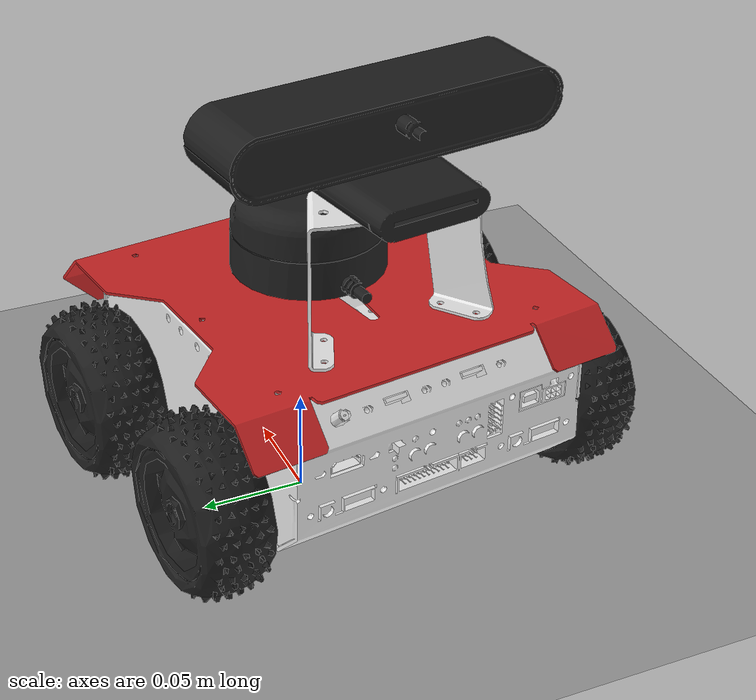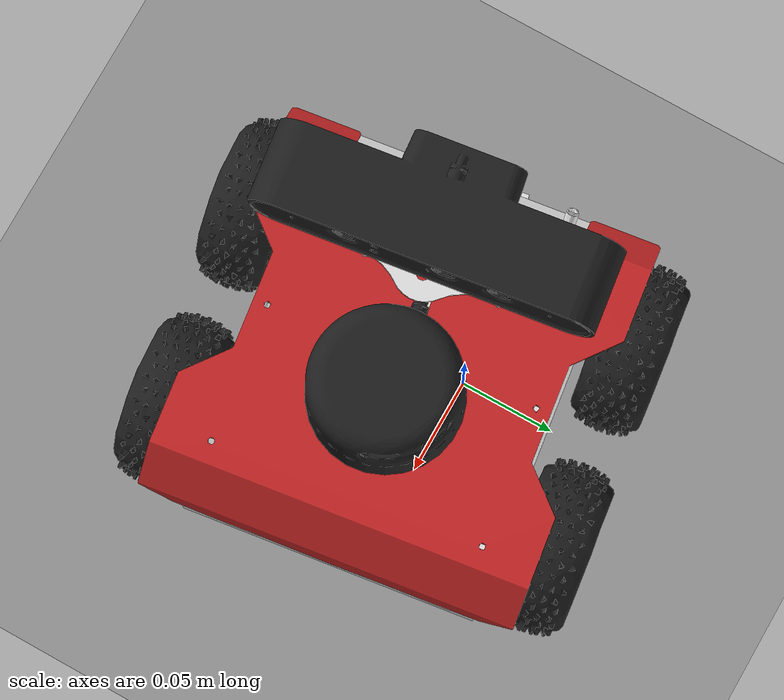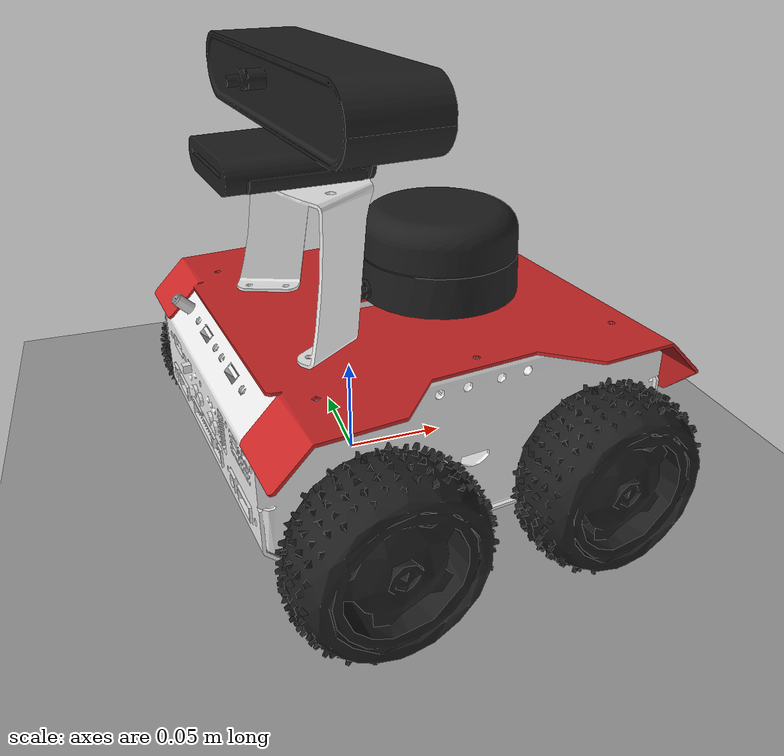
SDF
<sdf version="1.7">
 <world name="default">
  <light name="sun" type="directional">
   <pose>0 0 10 0 -0 0</pose>
   <diffuse>0.8 0.8 0.8 1</diffuse>
   <specular>0.2 0.2 0.2 1</specular>
   <attenuation>
    <range>1000</range>
    <constant>0.9</constant>
    <linear>0.01</linear>
    <quadratic>0.001</quadratic>
   </attenuation>
   <direction>0.5 0.1 -0.9</direction>
   <spot><inner_angle>0</inner_angle><outer_angle>0</outer_angle><falloff>0</falloff></spot>
  </light>
  <scene><ambient>0.4 0.4 0.4 1</ambient><background>0.7 0.7 0.7 1</background><shadows>1</shadows></scene>
  <physics type="ode">
   <max_step_size>0.01</max_step_size>
   <real_time_factor>1</real_time_factor>
   <real_time_update_rate>100</real_time_update_rate>
  </physics>
  <model name="ground_plane_0">
   <static>1</static>
   <link name="link">
    <collision name="collision">
     <geometry><plane><normal>0 0 1</normal><size>100 100</size></plane></geometry>
     <surface><friction><ode><mu>100</mu><mu2>50</mu2></ode></friction></surface>
    </collision>
    <visual name="visual">
     <cast_shadows>0</cast_shadows>
     <geometry><plane><normal>0 0 1</normal><size>100 100</size></plane></geometry>
     <material>
      <script><uri>file://media/materials/scripts/gazebo.material</uri><name>Gazebo/Grey</name></script>
     </material>
    </visual>
    <velocity_decay><linear>0</linear><angular>0</angular></velocity_decay>
   </link>
   <pose>0.497681 0 0 0 -0 0</pose>
  </model>
  <gravity>0 0 -9.8</gravity>
  <magnetic_field>6e-06 2.3e-05 -4.2e-05</magnetic_field>
  <atmosphere type="adiabatic"/>
  <spherical_coordinates>
   <surface_model>EARTH_WGS84</surface_model>
   <latitude_deg>0</latitude_deg>
   <longitude_deg>0</longitude_deg>
   <elevation>0</elevation>
   <heading_deg>0</heading_deg>
  </spherical_coordinates>
  <model name="rosbot">
   <link name="dummy">
    <inertial>
     <pose>-0 0 0.04003 0 -0 0</pose>
     <mass>5.01002</mass>
     <inertia>
      <ixx>0.0100024</ixx>
      <ixy>0.01</ixy>
      <ixz>3.8397e-08</ixz>
      <iyy>0.0100025</iyy>
      <iyz>0.01</iyz>
      <izz>0.01</izz>
     </inertia>
    </inertial>
    <collision name="dummy_fixed_joint_lump__collision_collision">
     <pose>0 0 0.02 0 -0 0</pose>
     <geometry><box><size>0.2 0.15 0.04</size></box></geometry>
    </collision>
    <collision name="dummy_fixed_joint_lump__camera_link_collision_1">
     <pose>-0.01 0 0.18 0 -0 0</pose>
     <geometry><box><size>0.001 0.001 0.001</size></box></geometry>
    </collision>
    <collision name="dummy_fixed_joint_lump__laser_collision_2">
     <pose>0.02 0 0.058 1.5707 0 1.56682</pose>
     <geometry>
      <mesh>
       <scale>0.001 0.001 0.001</scale>
       <uri>/home/mateusz/ros_workspace/src/rosbot_description/src/rosbot_description/meshes/rplidar.dae</uri>
      </mesh>
     </geometry>
    </collision>
    <visual name="dummy_fixed_joint_lump__base_link_visual_visual">
     <pose>0 0 -0.02 1.5707 0 1.5707</pose>
     <geometry>
      <mesh>
       <scale>0.001 0.001 0.001</scale>
       <uri>/home/mateusz/ros_workspace/src/rosbot_description/src/rosbot_description/meshes/box.dae</uri>
      </mesh>
     </geometry>
     <material>
      <script><name>Gazebo/White</name><uri>file://media/materials/scripts/gazebo.material</uri></script>
     </material>
    </visual>
    <visual name="dummy_fixed_joint_lump__camera_link_visual_1">
     <pose>-0.04 0 0.15 1.5707 0 1.5707</pose>
     <geometry>
      <mesh>
       <scale>0.001 0.001 0.001</scale>
       <uri>/home/mateusz/ros_workspace/src/rosbot_description/src/rosbot_description/meshes/astra.dae</uri>
      </mesh>
     </geometry>
     <material>
      <script><name>Gazebo/Black</name><uri>file://media/materials/scripts/gazebo.material</uri></script>
     </material>
    </visual>
    <visual name="dummy_fixed_joint_lump__laser_visual_2">
     <pose>0.02 0 0.058 1.5707 0 1.56682</pose>
     <geometry>
      <mesh>
       <scale>0.001 0.001 0.001</scale>
       <uri>/home/mateusz/ros_workspace/src/rosbot_description/src/rosbot_description/meshes/rplidar.dae</uri>
      </mesh>
     </geometry>
     <material>
      <script><name>Gazebo/Black</name><uri>file://media/materials/scripts/gazebo.material</uri></script>
     </material>
    </visual>
    <visual name="dummy_fixed_joint_lump__top_visual_3">
     <pose>0 0 0.055 1.5707 0 1.5707</pose>
     <geometry>
      <mesh>
       <scale>0.001 0.001 0.001</scale>
       <uri>/home/mateusz/ros_workspace/src/rosbot_description/src/rosbot_description/meshes/upper.dae</uri>
      </mesh>
     </geometry>
     <material>
      <script><name>Gazebo/Red</name><uri>file://media/materials/scripts/gazebo.material</uri></script>
     </material>
    </visual>
    <sensor name="openni_camera_camera" type="depth">
     <always_on>1</always_on>
     <visualize>1</visualize>
     <camera>
      <horizontal_fov>1.047</horizontal_fov>
      <image><width>640</width><height>480</height><format>R8G8B8</format></image>
      <depth_camera><output>depths</output></depth_camera>
      <clip><near>0.1</near><far>100</far></clip>
     </camera>
     <plugin name="kinect_controller" filename="libgazebo_ros_openni_kinect.so">
      <alwaysOn>1</alwaysOn>
      <updateRate>10.0</updateRate>
      <cameraName>camera</cameraName>
      <frameName>camera_depth_frame</frameName>
      <imageTopicName>rgb/image_raw</imageTopicName>
      <depthImageTopicName>depth/image_raw</depthImageTopicName>
      <pointCloudTopicName>depth/points</pointCloudTopicName>
      <cameraInfoTopicName>rgb/camera_info</cameraInfoTopicName>
      <depthImageCameraInfoTopicName>depth/camera_info</depthImageCameraInfoTopicName>
      <pointCloudCutoff>0.4</pointCloudCutoff>
      <hackBaseline>0.07</hackBaseline>
      <distortionK1>0.0</distortionK1>
      <distortionK2>0.0</distortionK2>
      <distortionK3>0.0</distortionK3>
      <distortionT1>0.0</distortionT1>
      <distortionT2>0.0</distortionT2>
      <CxPrime>0.0</CxPrime>
      <Cx>0.0</Cx>
      <Cy>0.0</Cy>
      <focalLength>0.0</focalLength>
      <robotNamespace>/</robotNamespace>
     </plugin>
     <pose>-0.03 0 0.18 0 -0 0</pose>
    </sensor>
    <sensor name="range_fl" type="ray">
     <update_rate>5</update_rate>
     <ray>
      <scan>
       <horizontal>
        <samples>5</samples>
        <resolution>1</resolution>
        <min_angle>-0.05</min_angle>
        <max_angle>0.05</max_angle>
       </horizontal>
       <vertical>
        <samples>5</samples>
        <resolution>1</resolution>
        <min_angle>-0.05</min_angle>
        <max_angle>0.05</max_angle>
       </vertical>
      </scan>
      <range><min>0.01</min><max>0.9</max><resolution>0.01</resolution></range>
     </ray>
     <plugin name="gazebo_ros_range" filename="libgazebo_ros_range.so">
      <gaussianNoise>0.005</gaussianNoise>
      <alwaysOn>1</alwaysOn>
      <updateRate>5</updateRate>
      <topicName>range/fl</topicName>
      <frameName>range_fl</frameName>
      <fov>0.1</fov>
      <radiation>ultrasound</radiation>
      <robotNamespace>/</robotNamespace>
     </plugin>
     <pose>0.1 0.05 0.01 0 -0 0.13</pose>
    </sensor>
    <sensor name="range_fr" type="ray">
     <update_rate>5</update_rate>
     <ray>
      <scan>
       <horizontal>
        <samples>5</samples>
        <resolution>1</resolution>
        <min_angle>-0.05</min_angle>
        <max_angle>0.05</max_angle>
       </horizontal>
       <vertical>
        <samples>5</samples>
        <resolution>1</resolution>
        <min_angle>-0.05</min_angle>
        <max_angle>0.05</max_angle>
       </vertical>
      </scan>
      <range><min>0.01</min><max>0.9</max><resolution>0.01</resolution></range>
     </ray>
     <plugin name="gazebo_ros_range" filename="libgazebo_ros_range.so">
      <gaussianNoise>0.005</gaussianNoise>
      <alwaysOn>1</alwaysOn>
      <updateRate>5</updateRate>
      <topicName>range/fr</topicName>
      <frameName>range_fr</frameName>
      <fov>0.1</fov>
      <radiation>ultrasound</radiation>
      <robotNamespace>/</robotNamespace>
     </plugin>
     <pose>0.1 -0.05 0.01 0 0 -0.13</pose>
    </sensor>
    <sensor name="range_rl" type="ray">
     <update_rate>5</update_rate>
     <ray>
      <scan>
       <horizontal>
        <samples>5</samples>
        <resolution>1</resolution>
        <min_angle>-0.05</min_angle>
        <max_angle>0.05</max_angle>
       </horizontal>
       <vertical>
        <samples>5</samples>
        <resolution>1</resolution>
        <min_angle>-0.05</min_angle>
        <max_angle>0.05</max_angle>
       </vertical>
      </scan>
      <range><min>0.01</min><max>0.9</max><resolution>0.01</resolution></range>
     </ray>
     <plugin name="gazebo_ros_range" filename="libgazebo_ros_range.so">
      <gaussianNoise>0.005</gaussianNoise>
      <alwaysOn>1</alwaysOn>
      <updateRate>5</updateRate>
      <topicName>range/rl</topicName>
      <frameName>range_rl</frameName>
      <fov>0.1</fov>
      <radiation>ultrasound</radiation>
      <robotNamespace>/</robotNamespace>
     </plugin>
     <pose>-0.1 0.05 0.01 0 -0 3.01</pose>
    </sensor>
    <sensor name="range_rr" type="ray">
     <update_rate>5</update_rate>
     <ray>
      <scan>
       <horizontal>
        <samples>5</samples>
        <resolution>1</resolution>
        <min_angle>-0.05</min_angle>
        <max_angle>0.05</max_angle>
       </horizontal>
       <vertical>
        <samples>5</samples>
        <resolution>1</resolution>
        <min_angle>-0.05</min_angle>
        <max_angle>0.05</max_angle>
       </vertical>
      </scan>
      <range><min>0.01</min><max>0.9</max><resolution>0.01</resolution></range>
     </ray>
     <plugin name="gazebo_ros_range" filename="libgazebo_ros_range.so">
      <gaussianNoise>0.005</gaussianNoise>
      <alwaysOn>1</alwaysOn>
      <updateRate>5</updateRate>
      <topicName>range/rr</topicName>
      <frameName>range_rr</frameName>
      <fov>0.1</fov>
      <radiation>ultrasound</radiation>
      <robotNamespace>/</robotNamespace>
     </plugin>
     <pose>-0.1 -0.05 0.01 0 -0 -3.01319</pose>
    </sensor>
    <sensor name="head_rplidar_sensor" type="ray">
     <visualize>0</visualize>
     <update_rate>40</update_rate>
     <ray>
      <scan>
       <horizontal>
        <samples>720</samples>
        <resolution>1</resolution>
        <min_angle>-3.14159</min_angle>
        <max_angle>3.14159</max_angle>
       </horizontal>
       <vertical><samples>1</samples><min_angle>0</min_angle><max_angle>0</max_angle></vertical>
      </scan>
      <range><min>0.2</min><max>12</max><resolution>0.01</resolution></range>
      <noise><type>gaussian</type><mean>0</mean><stddev>0.01</stddev></noise>
     </ray>
     <plugin name="gazebo_ros_head_rplidar_controller" filename="libgazebo_ros_laser.so">
      <topicName>scan</topicName>
      <frameName>laser</frameName>
      <robotNamespace>/</robotNamespace>
     </plugin>
     <pose>0.02 0 0.058 0 -0 3.14</pose>
    </sensor>
    <sensor name="imu_sensor" type="imu">
     <always_on>1</always_on>
     <update_rate>10</update_rate>
     <visualize>1</visualize>
     <topic>imu</topic>
     <plugin name="imu_plugin" filename="libgazebo_ros_imu_sensor.so">
      <topicName>imu</topicName>
      <bodyName>imu_link</bodyName>
      <updateRateHZ>10.0</updateRateHZ>
      <gaussianNoise>0.0</gaussianNoise>
      <xyzOffset>0 0 0</xyzOffset>
      <rpyOffset>0 0 0</rpyOffset>
      <frameName>imu_link</frameName>
      <robotNamespace>/</robotNamespace>
     </plugin>
    </sensor>
   </link>
   <joint name="front_left_wheel_hinge" type="revolute">
    <pose relative_to="dummy">0.05 0.11 0 0 -0 0</pose>
    <parent>dummy</parent>
    <child>front_left_wheel</child>
    <axis>
     <xyz>0 1 0</xyz>
     <limit><lower>-1e+16</lower><upper>1e+16</upper></limit>
     <dynamics><spring_reference>0</spring_reference><spring_stiffness>0</spring_stiffness></dynamics>
    </axis>
   </joint>
   <link name="front_left_wheel">
    <pose relative_to="front_left_wheel_hinge">0 0 0 0 -0 0</pose>
    <inertial>
     <pose>0 0 0 -0 1.5707 1.5707</pose>
     <mass>0.5</mass>
     <inertia><ixx>0.001</ixx><ixy>0</ixy><ixz>0</ixz><iyy>0.001</iyy><iyz>0</iyz><izz>0.001</izz></inertia>
    </inertial>
    <collision name="front_left_wheel_fixed_joint_lump__collision_collision">
     <pose>0 0 0 0 -0 1.5707</pose>
     <geometry>
      <mesh>
       <scale>0.001 0.001 0.001</scale>
       <uri>/home/mateusz/ros_workspace/src/rosbot_description/src/rosbot_description/meshes/wheel-v2.stl</uri>
      </mesh>
     </geometry>
    </collision>
    <visual name="front_left_wheel_visual_visual">
     <pose>0 0 0 0 -0 1.5707</pose>
     <geometry>
      <mesh>
       <scale>0.001 0.001 0.001</scale>
       <uri>/home/mateusz/ros_workspace/src/rosbot_description/src/rosbot_description/meshes/wheel.dae</uri>
      </mesh>
     </geometry>
     <material>
      <script><name>Gazebo/Black</name><uri>file://media/materials/scripts/gazebo.material</uri></script>
     </material>
    </visual>
   </link>
   <joint name="front_right_wheel_hinge" type="revolute">
    <pose relative_to="dummy">0.05 -0.11 0 0 -0 0</pose>
    <parent>dummy</parent>
    <child>front_right_wheel</child>
    <axis>
     <xyz>0 1 0</xyz>
     <limit><lower>-1e+16</lower><upper>1e+16</upper></limit>
     <dynamics><spring_reference>0</spring_reference><spring_stiffness>0</spring_stiffness></dynamics>
    </axis>
   </joint>
   <link name="front_right_wheel">
    <pose relative_to="front_right_wheel_hinge">0 0 0 0 -0 0</pose>
    <inertial>
     <pose>0 0 0 -0 1.5707 1.5707</pose>
     <mass>0.5</mass>
     <inertia><ixx>0.001</ixx><ixy>0</ixy><ixz>0</ixz><iyy>0.001</iyy><iyz>0</iyz><izz>0.001</izz></inertia>
    </inertial>
    <collision name="front_right_wheel_fixed_joint_lump__collision_collision">
     <pose>0 0 0 0 0 -1.5707</pose>
     <geometry>
      <mesh>
       <scale>0.001 0.001 0.001</scale>
       <uri>/home/mateusz/ros_workspace/src/rosbot_description/src/rosbot_description/meshes/wheel-v2.stl</uri>
      </mesh>
     </geometry>
    </collision>
    <visual name="front_right_wheel_visual_visual">
     <pose>0 0 0 0 0 -1.5707</pose>
     <geometry>
      <mesh>
       <scale>0.001 0.001 0.001</scale>
       <uri>/home/mateusz/ros_workspace/src/rosbot_description/src/rosbot_description/meshes/wheel.dae</uri>
      </mesh>
     </geometry>
     <material>
      <script><name>Gazebo/Black</name><uri>file://media/materials/scripts/gazebo.material</uri></script>
     </material>
    </visual>
   </link>
   <joint name="rear_left_wheel_hinge" type="revolute">
    <pose relative_to="dummy">-0.055 0.11 0 0 -0 0</pose>
    <parent>dummy</parent>
    <child>rear_left_wheel</child>
    <axis>
     <xyz>0 1 0</xyz>
     <limit><lower>-1e+16</lower><upper>1e+16</upper></limit>
     <dynamics><spring_reference>0</spring_reference><spring_stiffness>0</spring_stiffness></dynamics>
    </axis>
   </joint>
   <link name="rear_left_wheel">
    <pose relative_to="rear_left_wheel_hinge">0 0 0 0 -0 0</pose>
    <inertial>
     <pose>0 0 0 -0 1.5707 1.5707</pose>
     <mass>0.5</mass>
     <inertia><ixx>0.001</ixx><ixy>0</ixy><ixz>0</ixz><iyy>0.001</iyy><iyz>0</iyz><izz>0.001</izz></inertia>
    </inertial>
    <collision name="rear_left_wheel_fixed_joint_lump__collision_collision">
     <pose>0 0 0 0 -0 1.5707</pose>
     <geometry>
      <mesh>
       <scale>0.001 0.001 0.001</scale>
       <uri>/home/mateusz/ros_workspace/src/rosbot_description/src/rosbot_description/meshes/wheel-v2.stl</uri>
      </mesh>
     </geometry>
    </collision>
    <visual name="rear_left_wheel_visual_visual">
     <pose>0 0 0 0 -0 1.5707</pose>
     <geometry>
      <mesh>
       <scale>0.001 0.001 0.001</scale>
       <uri>/home/mateusz/ros_workspace/src/rosbot_description/src/rosbot_description/meshes/wheel.dae</uri>
      </mesh>
     </geometry>
     <material>
      <script><name>Gazebo/Black</name><uri>file://media/materials/scripts/gazebo.material</uri></script>
     </material>
    </visual>
   </link>
   <joint name="rear_right_wheel_hinge" type="revolute">
    <pose relative_to="dummy">-0.055 -0.11 0 0 -0 0</pose>
    <parent>dummy</parent>
    <child>rear_right_wheel</child>
    <axis>
     <xyz>0 1 0</xyz>
     <limit><lower>-1e+16</lower><upper>1e+16</upper></limit>
     <dynamics><spring_reference>0</spring_reference><spring_stiffness>0</spring_stiffness></dynamics>
    </axis>
   </joint>
   <link name="rear_right_wheel">
    <pose relative_to="rear_right_wheel_hinge">0 0 0 0 -0 0</pose>
    <inertial>
     <pose>0 0 0 -0 1.5707 1.5707</pose>
     <mass>0.5</mass>
     <inertia><ixx>0.001</ixx><ixy>0</ixy><ixz>0</ixz><iyy>0.001</iyy><iyz>0</iyz><izz>0.001</izz></inertia>
    </inertial>
    <collision name="rear_right_wheel_fixed_joint_lump__collision_collision">
     <pose>0 0 0 0 0 -1.5707</pose>
     <geometry>
      <mesh>
       <scale>0.001 0.001 0.001</scale>
       <uri>/home/mateusz/ros_workspace/src/rosbot_description/src/rosbot_description/meshes/wheel-v2.stl</uri>
      </mesh>
     </geometry>
    </collision>
    <visual name="rear_right_wheel_visual_visual">
     <pose>0 0 0 0 0 -1.5707</pose>
     <geometry>
      <mesh>
       <scale>0.001 0.001 0.001</scale>
       <uri>/home/mateusz/ros_workspace/src/rosbot_description/src/rosbot_description/meshes/wheel.dae</uri>
      </mesh>
     </geometry>
     <material>
      <script><name>Gazebo/Black</name><uri>file://media/materials/scripts/gazebo.material</uri></script>
     </material>
    </visual>
   </link>
   <plugin name="skid_steer_drive_controller" filename="libgazebo_ros_skid_steer_drive.so">
    <robotNamespace>/</robotNamespace>
    <updateRate>10.0</updateRate>
    <robotBaseFrame>/base_link</robotBaseFrame>
    <wheelSeparation>0.20</wheelSeparation>
    <wheelDiameter>0.08</wheelDiameter>
    <torque>5</torque>
    <leftFrontJoint>front_left_wheel_hinge</leftFrontJoint>
    <rightFrontJoint>front_right_wheel_hinge</rightFrontJoint>
    <leftRearJoint>rear_left_wheel_hinge</leftRearJoint>
    <rightRearJoint>rear_right_wheel_hinge</rightRearJoint>
    <topicName>cmd_vel</topicName>
    <commandTopic>cmd_vel</commandTopic>
    <broadcastTF>1</broadcastTF>
    <odometryTopic>odom</odometryTopic>
    <odometryFrame>/odom</odometryFrame>
    <covariance_x>0.000100</covariance_x>
    <covariance_y>0.000100</covariance_y>
    <covariance_yaw>0.010000</covariance_yaw>
   </plugin>
   <static>0</static>
   <plugin name="gazebo_ros_control" filename="libgazebo_ros_control.so">
    <legacyModeNS>1</legacyModeNS>
    <robotNamespace>/</robotNamespace>
   </plugin>
   <pose>0.020175 -0.024016 0.040913 -9.6e-05 0.000728 0.137168</pose>
  </model>
 </world>
</sdf>
